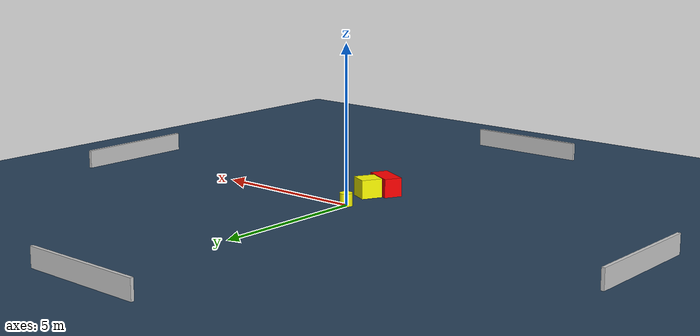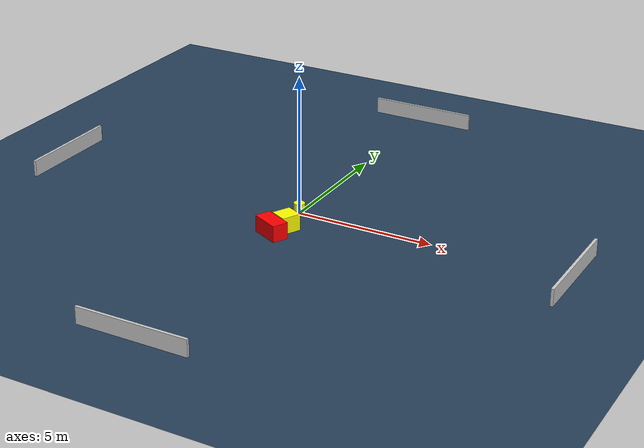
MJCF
<?xml version="1.0" ?>
<mujoco model="generated_environment">
  <option timestep="0.01" integrator="RK4" cone="elliptic"/>
  <default>
    <geom density="1"/>
  </default>
  <asset>
    <texture builtin="gradient" height="3072" name="skybox" rgb1="0.3 0.5 0.7" rgb2="0 0 0" type="skybox" width="512"/>
    <texture builtin="checker" height="300" name="groundplane" rgb1="0.2 0.3 0.4" rgb2="0.1 0.2 0.3" type="2d" width="300"/>
    <material name="groundplane" reflectance="0.2" texrepeat="5 5" texture="groundplane"/>
  </asset>
  <worldbody>
    <light dir="0 0 -1" directional="true" pos="0 0 1.5"/>
    <geom condim="3" friction="0.5 0.005 0.001" material="groundplane" name="floor" pos="0 0 0" size="0 0 0.05" type="plane"/>
    <body name="walls">
      <geom name="wall_1" condim="4" pos="-10.0 0.0 0.3" rgba="0.800000011920929 0.800000011920929 0.800000011920929 1.0" size="0.05 2.0 0.3" type="box"/>
      <geom name="wall_2" condim="4" pos="10.0 0.0 0.3" rgba="0.800000011920929 0.800000011920929 0.800000011920929 1.0" size="0.05 2.0 0.3" type="box"/>
      <geom name="wall_3" condim="4" pos="0.0 -10.0 0.3" rgba="0.800000011920929 0.800000011920929 0.800000011920929 1.0" size="2.0 0.05 0.3" type="box"/>
      <geom name="wall_4" condim="4" pos="0.0 10.0 0.3" rgba="0.800000011920929 0.800000011920929 0.800000011920929 1.0" size="2.0 0.05 0.3" type="box"/>
    </body>
    <body name="robot">
      <joint name="joint_x" type="slide" pos="0 0 0" axis="1 0 0"/>
      <joint name="joint_y" type="slide" pos="0 0 0" axis="0 1 0"/>
      <geom name="robot" type="cylinder" pos="0.0 0.0 0.2" size="0.2 0.2 0.0" mass="5.0" friction="1.0 0.005 0.0001" condim="4" rgba="1.0 1.0 0.0 1.0"/>
    </body>
    <body name="obstacle_1_movable">
      <geom name="obstacle_1_movable" condim="4" pos="0.23395936575926213 -1.3187806028143865 0.3" euler="0 0 243.73728696511125" friction="0.0 0.005 0.001" rgba="1.0 1.0 0.0 1.0" size="0.343297954311907 0.3231358003035949 0.3" type="box" mass="0.1"/>
      <joint type="free"/>
    </body>
    <body name="obstacle_2_static">
      <geom name="obstacle_2_static" condim="4" pos="0.023102140132771884 -1.9494910451036243 0.3" euler="0 0 64.03749959581181" friction="0.0 0.005 0.001" rgba="1.0 0.0 0.0 1.0" size="0.2882710308989929 0.5423654046520054 0.3" type="box"/>
    </body>
  </worldbody>
  <actuator>
    <motor name="actuator_x" joint="joint_x" gear="1" ctrlrange="-1 1"/>
    <motor name="actuator_y" joint="joint_y" gear="1" ctrlrange="-1 1"/>
  </actuator>
</mujoco>
